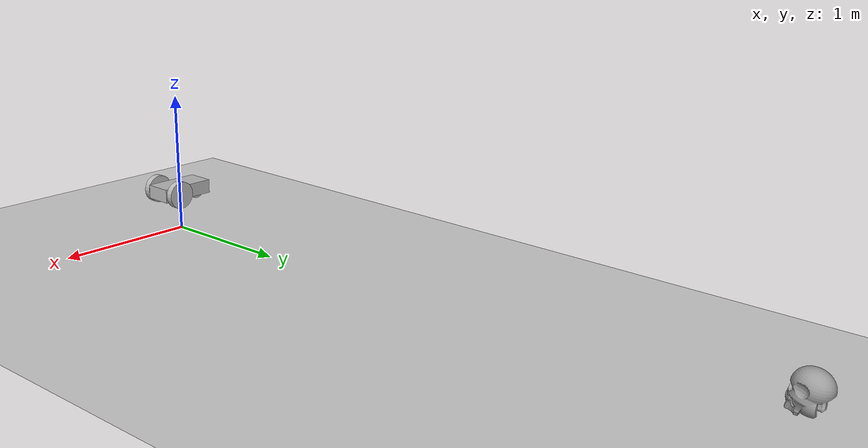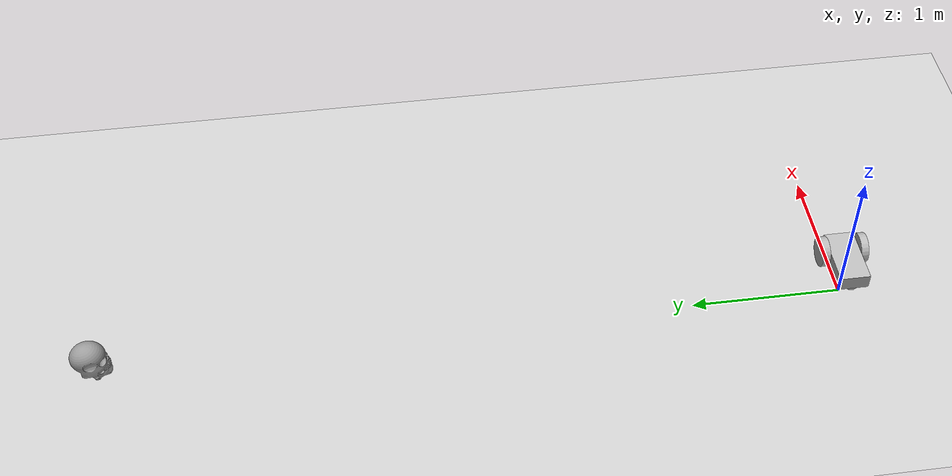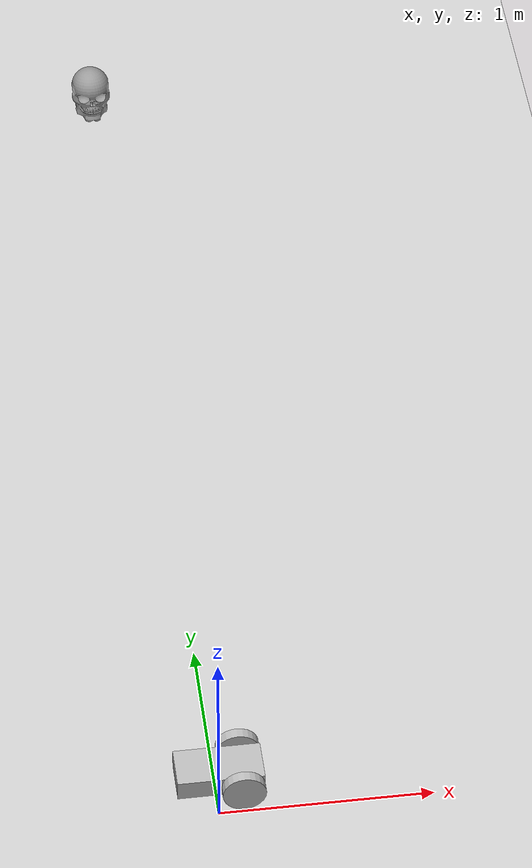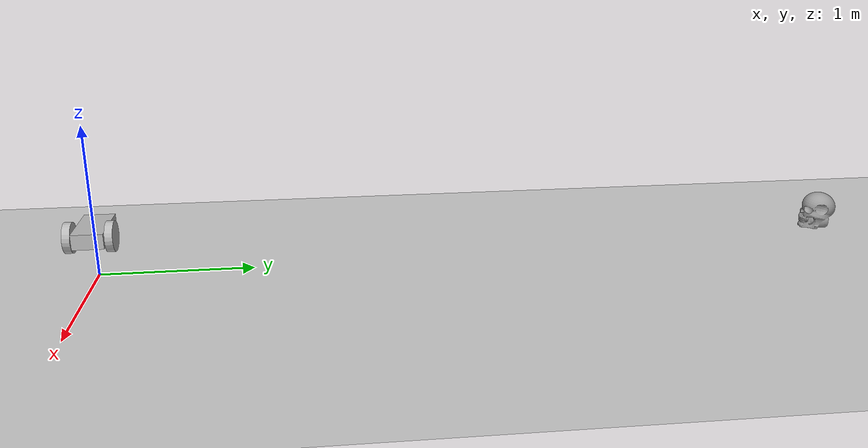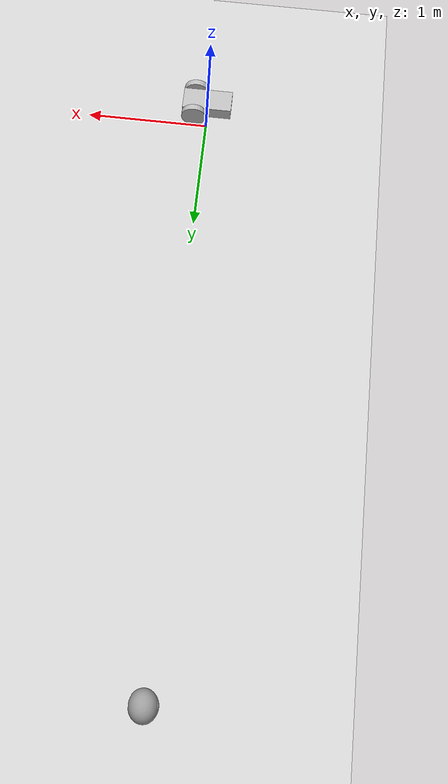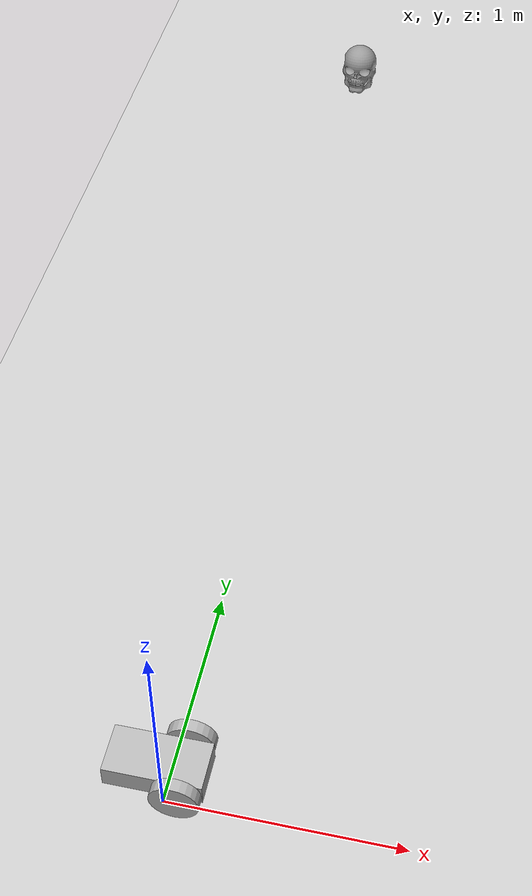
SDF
<?xml version="1.0" ?>

<sdf version="1.5">
	<world name="default">
		<!-- A global light source -->
		<include>
			<uri>model://sun</uri>
		</include>

		<!-- A ground plane -->
		<include>
			<uri>model://ground_plane</uri>
		</include>

		<include>
			<uri>model://diffdrive</uri>
			<static>false</static>
			<pose> 0 0 0.2 0 0 0</pose>
		</include>

		<include>
			<uri>model://my1stmodel</uri>
			<static>true</static>
			<pose> 0 5 0.1 0 0 0</pose>
		</include>

	</world>
</sdf>

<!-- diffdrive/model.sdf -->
<sdf version='1.4'>
  <model name="diffdrive">
  <static>false</static>

  <link name='chassis'>
 <pose>0 0 0.1 0 0 0</pose>
<inertial>
 <mass>10.0</mass>
 <pose>0.0 0 0.1 0 0 0</pose>
 <inertia>
 <ixx>0.5</ixx>
 <iyy>1.0</iyy>
 <izz>0.1</izz>
 </inertia>
 </inertial>
 <collision name='collision'>
 <geometry>
 <box>
 <size>.4 .2 .1</size>
 </box>
 </geometry>
 </collision>
<visual name='visual'>
 <pose>0 0 0.0 0 0 0</pose>
 <geometry>
 <box>
 <size>.4 .2 .1</size>
 </box>
 </geometry>
 </visual>
 <collision name='caster_collision'>
 <pose>-0.15 0 -0.05 0 0 0</pose>
 <geometry>
 <sphere>
 <radius>.05</radius>
 </sphere>
 </geometry>
<surface>
 <friction>
 <ode>
 <mu>0</mu>
 <mu2>0</mu2>
 <slip1>1.0</slip1>
 <slip2>1.0</slip2>
 </ode>
 </friction>
 </surface>
 </collision>
<visual name='caster_visual'>
 <pose>-0.15 0 -0.05 0 0 0</pose>
 <geometry>
 <sphere>
 <radius>.05</radius>
 </sphere>
 </geometry>
 </visual>

 </link>

 <link name="left_wheel">
 <pose>0.1 0.13 0.1 0 1.5707 1.5707</pose>
 <collision name="collision">
 <geometry>
 <cylinder>
 <radius>.1</radius>
 <length>.05</length>
 </cylinder>
 </geometry>
 </collision>
 <visual name="visual">
 <geometry>
 <cylinder>
 <radius>.1</radius>
 <length>.05</length>
 </cylinder>
 </geometry>
 </visual>
 </link>

 <link name="right_wheel">
 <pose>0.1 -0.13 0.1 0 1.5707 1.5707</pose>
 <collision name="collision">
 <geometry>
 <cylinder>
 <radius>.1</radius>
 <length>.05</length>
 </cylinder>
 </geometry>
 </collision>
 <visual name="visual">
 <geometry>
 <cylinder>
 <radius>.1</radius>
 <length>.05</length>
 </cylinder>
 </geometry>
 </visual>
 </link>

 <joint type="revolute" name="left_wheel_hinge">
 <pose>0 0 -0.03 0 0 0</pose>
 <child>left_wheel</child>
 <parent>chassis</parent>
 <axis>
 <xyz>0 1 0</xyz>
 </axis>
 </joint>
<joint type="revolute" name="right_wheel_hinge">
 <pose>0 0 0.03 0 0 0</pose>
 <child>right_wheel</child>
 <parent>chassis</parent>
 <axis>
 <xyz>0 1 0</xyz>
 </axis>
 </joint>

 <plugin name="differential_drive_controller" filename="libgazebo_ros_diff_drive.so">
 <alwaysOn>true</alwaysOn>
 <updateRate>20</updateRate>
 <leftJoint>left_wheel_hinge</leftJoint>
 <rightJoint>right_wheel_hinge</rightJoint>
 <wheelSeparation>0.4</wheelSeparation>
 <wheelDiameter>0.1</wheelDiameter>
 <torque>20</torque>
 <commandTopic>cmd_vel</commandTopic>
 <odometryTopic>odom</odometryTopic>
 <odometryFrame>odom</odometryFrame>
 <robotBaseFrame>base_footprint</robotBaseFrame>
 </plugin>

 <sensor type="ray" name="sensor">
  <pose>0 0 -0.004645 1.5707 0 0</pose>
  <visualize>true</visualize>
  <update_rate>30</update_rate>
  <ray>
    <scan>
      <horizontal>
        <samples>32</samples>
        <resolution>1</resolution>
        <min_angle>-0.53529248</min_angle>
        <max_angle>0.18622663</max_angle>
      </horizontal>
    </scan>
    <range>
      <min>0.05</min>
      <max>70</max>
      <resolution>0.02</resolution>
    </range>
  </ray>
  <plugin name="sensor_plugin" filename="libgazebo_ros_laser.so">
    <topicName>/your/sensor/topic/name</topicName>
    <frameName>/your/frame/name</frameName>
  </plugin>
</sensor>

  </model>
</sdf>

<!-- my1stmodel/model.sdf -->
<sdf version="1.5">
  <model name="my1stmodel">
    <static>true</static>
    <link name="link">
      <collision name="collision">
        <geometry>
          <mesh>
            <uri>model://my1stmodel/meshes/something.stl</uri>
            <scale> 0.01 0.01 0.01 </scale>
          </mesh>
        </geometry>
        <surface>
          <friction>
            <ode>
              <mu>100</mu>
              <mu2>50</mu2>
            </ode>
          </friction>
        </surface>
      </collision>
      <visual name="visual">
        <geometry>
          <mesh>
            <uri>model://my1stmodel/meshes/something.stl</uri>
            <scale> 0.01 0.01 0.01 </scale>
          </mesh>
        </geometry>
        <material>
          <script>
            <uri>file://media/materials/scripts/gazebo.material</uri>
            <name>Gazebo/Grey</name>
          </script>
        </material>
      </visual>
    </link>
  </model>
</sdf>
